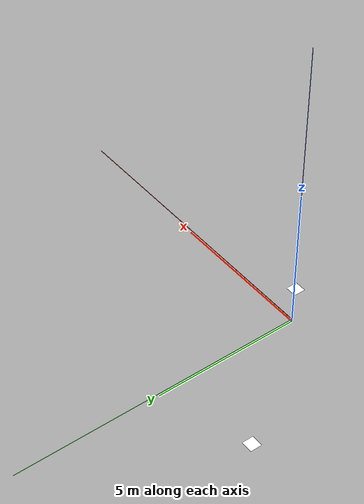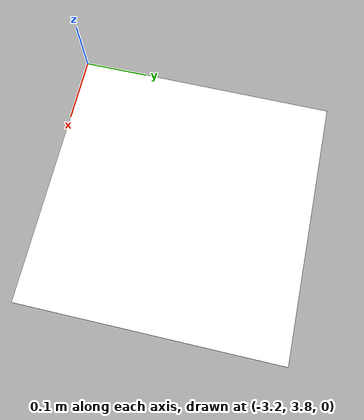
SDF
<sdf version="1.9">
 <world name="aruco_landing">
  <physics name="1ms" type="ignore">
   <max_step_size>0.001</max_step_size>
   <real_time_factor>1.0</real_time_factor>
  </physics>
  <plugin filename="gz-sim-physics-system" name="gz::sim::systems::Physics"/>
  <plugin filename="gz-sim-sensors-system" name="gz::sim::systems::Sensors">
   <render_engine>ogre2</render_engine>
  </plugin>
  <plugin filename="gz-sim-user-commands-system" name="gz::sim::systems::UserCommands"/>
  <plugin filename="gz-sim-scene-broadcaster-system" name="gz::sim::systems::SceneBroadcaster"/>
  <plugin filename="gz-sim-imu-system" name="gz::sim::systems::Imu"/>
  <plugin filename="gz-sim-navsat-system" name="gz::sim::systems::NavSat"/>
  <scene><ambient>1.0 1.0 1.0</ambient><background>0.8 0.8 0.8</background></scene>
  <spherical_coordinates>
   <latitude_deg>-35.363262</latitude_deg>
   <longitude_deg>149.165237</longitude_deg>
   <elevation>584</elevation>
   <heading_deg>0</heading_deg>
   <surface_model>EARTH_WGS84</surface_model>
  </spherical_coordinates>
  <light type="directional" name="sun">
   <pose>0 0 10 0 0 0</pose>
   <diffuse>0.8 0.8 0.8 1</diffuse>
   <specular>0.8 0.8 0.8 1</specular>
   <attenuation>
    <range>1000</range>
    <constant>0.9</constant>
    <linear>0.01</linear>
    <quadratic>0.001</quadratic>
   </attenuation>
   <direction>-0.5 0.1 -0.9</direction>
  </light>
  <model name="axes">
   <static>1</static>
   <link name="link">
    <visual name="r">
     <cast_shadows>0</cast_shadows>
     <pose>5 0 0.1 0 0 0</pose>
     <geometry><box><size>10 0.01 0.01</size></box></geometry>
     <material><ambient>1 0 0 0.8</ambient><diffuse>1 0 0 0.8</diffuse><emissive>1 0 0 0.8</emissive></material>
    </visual>
    <visual name="g">
     <cast_shadows>0</cast_shadows>
     <pose>0 5 0.1 0 0 0</pose>
     <geometry><box><size>0.01 10 0.01</size></box></geometry>
     <material><ambient>0 1 0 0.8</ambient><diffuse>0 1 0 0.8</diffuse><emissive>0 1 0 0.8</emissive></material>
    </visual>
    <visual name="b">
     <cast_shadows>0</cast_shadows>
     <pose>0 0 5.1 0 0 0</pose>
     <geometry><box><size>0.01 0.01 10</size></box></geometry>
     <material><ambient>0 0 1 0.8</ambient><diffuse>0 0 1 0.8</diffuse><emissive>0 0 1 0.8</emissive></material>
    </visual>
    <sensor name="navsat_sensor" type="navsat"><always_on>1</always_on><update_rate>1</update_rate></sensor>
   </link>
  </model>
  <model name="aruco_marker_0">
   <static>true</static>
   <pose>1.0 -1.0 0.001 0 0 0</pose>
   <link name="link">
    <visual name="visual">
     <geometry><box><size>0.40 0.40 0.001</size></box></geometry>
     <material>
      <diffuse>1 1 1 1</diffuse>
      <specular>1 1 1 1</specular>
      <pbr><metal><albedo_map>/home/aimane/.gazebo/materials/textures/aruco_0.png</albedo_map></metal></pbr>
     </material>
    </visual>
    <collision name="collision"><geometry><box><size>0.40 0.40 0.001</size></box></geometry></collision>
   </link>
  </model>
  <model name="aruco_marker_1">
   <static>true</static>
   <pose>-3.0 4.0 0.001 0 0 0</pose>
   <link name="link">
    <visual name="visual">
     <geometry><box><size>0.40 0.40 0.001</size></box></geometry>
     <material>
      <diffuse>1 1 1 1</diffuse>
      <specular>1 1 1 1</specular>
      <pbr><metal><albedo_map>/home/aimane/.gazebo/materials/textures/aruco_1.png</albedo_map></metal></pbr>
     </material>
    </visual>
    <collision name="collision"><geometry><box><size>0.40 0.40 0.001</size></box></geometry></collision>
   </link>
  </model>
 </world>
</sdf>
